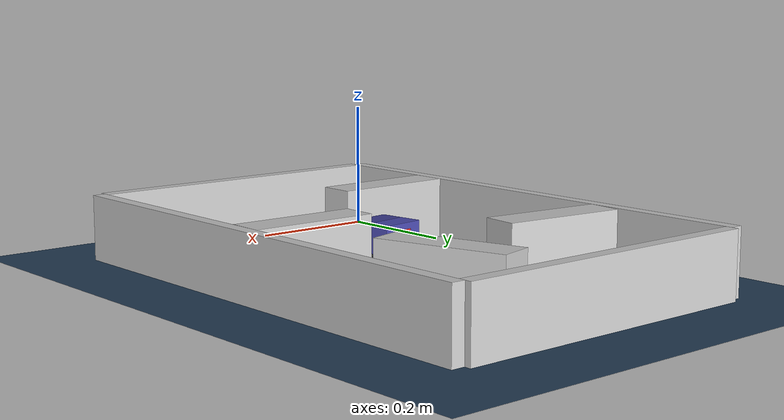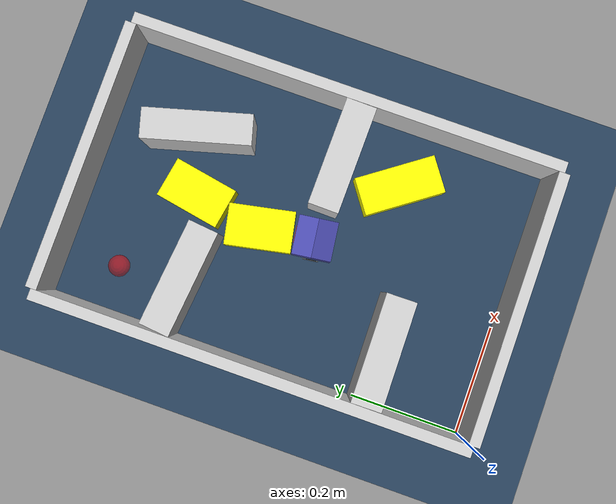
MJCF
<?xml version='1.0' encoding='utf-8'?>
<mujoco model="real_buildable">
  <compiler angle="degree" />
  <option timestep="0.002" integrator="implicitfast" iterations="100" cone="elliptic" />
  <default>
    <geom density="1" />
  </default>
  <asset>
    <texture builtin="gradient" height="3072" rgb1="0.3 0.5 0.7" rgb2="0 0 0" type="skybox" width="512" />
    <texture builtin="checker" height="300" mark="edge" markrgb="0.8 0.8 0.8" name="groundplane" rgb1="0.2 0.3 0.4" rgb2="0.1 0.2 0.3" type="2d" width="300" />
    <material name="groundplane" reflectance="0.2" texrepeat="5 5" texture="groundplane" texuniform="true" />
  </asset>
  <worldbody>
    <light dir="0 0 -1" directional="true" pos="0 0 1.5" />
    <geom name="floor" type="plane" condim="4" friction="0.5 0.005 0.001" material="groundplane" size="0 0 0.05" />
    <body name="walls">
      <geom name="wall_boundary_left" type="box" condim="4" friction="1.0 0.005 0.0001" rgba="0.8 0.8 0.8 1" pos="-0.010000 0.387500 0.050000" euler="0 0 0.000000" size="0.010000 0.397500 0.050000" />
      <geom name="wall_boundary_right" type="box" condim="4" friction="1.0 0.005 0.0001" rgba="0.8 0.8 0.8 1" pos="0.500000 0.387500 0.050000" euler="0 0 0.000000" size="0.010000 0.397500 0.050000" />
      <geom name="wall_boundary_bottom" type="box" condim="4" friction="1.0 0.005 0.0001" rgba="0.8 0.8 0.8 1" pos="0.245000 -0.010000 0.050000" euler="0 0 0.000000" size="0.245000 0.010000 0.050000" />
      <geom name="wall_boundary_top" type="box" condim="4" friction="1.0 0.005 0.0001" rgba="0.8 0.8 0.8 1" pos="0.245000 0.785000 0.050000" euler="0 0 0.000000" size="0.245000 0.010000 0.050000" />
      <geom name="wall_inner_1" type="box" condim="4" friction="1.0 0.005 0.0001" rgba="0.8 0.8 0.8 1" pos="0.097808 0.183074 0.050000" euler="0 0 0.654098" size="0.097500 0.027500 0.050000" />
      <geom name="wall_inner_2" type="box" condim="4" friction="1.0 0.005 0.0001" rgba="0.8 0.8 0.8 1" pos="0.392076 0.360205 0.050000" euler="0 0 -0.908587" size="0.097500 0.027500 0.050000" />
      <geom name="wall_inner_3" type="box" condim="4" friction="1.0 0.005 0.0001" rgba="0.8 0.8 0.8 1" pos="0.100000 0.554000 0.050000" euler="0 0 174.100000" size="0.097500 0.027500 0.050000" />
      <geom name="wall_inner_4" type="box" condim="4" friction="1.0 0.005 0.0001" rgba="0.8 0.8 0.8 1" pos="0.356000 0.615000 0.050000" euler="0 0 105.500000" size="0.097500 0.027500 0.050000" />
    </body>
    <body name="car" pos="0.24292371431913026 0.35747487242428583 0.01" quat="0.66119342478367993 0 0 0.75021547239631636">
      <freejoint name="car_freejoint" />
      <inertial pos="0 0 0.0375" mass="0.35" diaginertia="0.000266 0.000266 0.000286" />
      <geom name="front_chassis_collision" type="box" pos="0.0175 0 0.0375" size="0.0175 0.035 0.0325" rgba="0.3 0.3 0.7 1" />
      <geom name="rear_chassis_collision" type="box" pos="-0.0175 0 0.0375" size="0.0175 0.035 0.0325" rgba="0.25 0.25 0.6 1" />
      <geom name="front_marker" type="box" pos="0.034 0 0.0505" size="0.002 0.015 0.01" rgba="1 0.2 0.2 1" contype="0" conaffinity="0" />
      <body name="rear_support_body" pos="-0.03 0 0.0025">
        <joint name="rear_caster_joint" type="ball" damping="0.0001" />
        <inertial pos="0 0 0" mass="0.025" diaginertia="0.000001 0.000001 0.000001" />
        <geom name="rear_support" type="sphere" pos="0 0 0" size="0.0025" friction="0 0 0" rgba="0.7 0.1 0.1 1" />
      </body>
      <body name="front_support_body" pos="0.03 0 0.0025">
        <joint name="front_caster_joint" type="ball" damping="0.0001" />
        <inertial pos="0 0 0" mass="0.025" diaginertia="0.000001 0.000001 0.000001" />
        <geom name="front_support" type="sphere" pos="0 0 0" size="0.0025" friction="0 0 0" rgba="0.1 0.7 0.1 1" />
      </body>
      <body name="left_wheel" pos="0 0.0375 0.015">
        <inertial pos="0 0 0" mass="0.05" diaginertia="0.000003 0.000006 0.000003" />
        <joint name="left_wheel_joint" type="hinge" axis="0 1 0" damping="0.01" armature="0.0001" />
        <geom name="left_wheel_collision" type="cylinder" size="0.015 0.0005" euler="90 0 0" rgba="0.1 0.1 0.1 1" />
      </body>
      <body name="right_wheel" pos="0 -0.0375 0.015">
        <inertial pos="0 0 0" mass="0.05" diaginertia="0.000003 0.000006 0.000003" />
        <joint name="right_wheel_joint" type="hinge" axis="0 1 0" damping="0.01" armature="0.0001" />
        <geom name="right_wheel_collision" type="cylinder" size="0.015 0.0005" euler="90 0 0" rgba="0.1 0.1 0.1 1" />
      </body>
    </body>
    <body name="obstacle_0_movable">
      <geom name="obstacle_0_movable" condim="4" pos="0.22902249330267277 0.45614329450606511 0.025000000000000001" friction="1 0.005 0.0001" rgba="1 1 0 1" size="0.037500 0.060000 0.025000" type="box" mass="0.1" quat="0.99506618618784759 0 0 0.099213331289559684" />
      <joint type="free" />
    </body>
    <body name="obstacle_1_movable">
      <geom name="obstacle_1_movable" condim="4" pos="0.25069479262081146 0.58387334879402208 0.025000000000000001" friction="1 0.005 0.0001" rgba="1 1 0 1" size="0.037500 0.060000 0.025000" type="box" mass="0.1" quat="0.99604332154413044 0 0 -0.088869013763717919" />
      <joint type="free" />
    </body>
    <body name="obstacle_2_movable">
      <geom name="obstacle_2_movable" condim="4" pos="0.3861319999999992 0.2449889999999996 0.02" friction="1 0.005 0.0001" rgba="1 1 0 1" size="0.035000 0.075000 0.020000" type="box" mass="0.1" quat="0.95180641351910933 0 0 0.30669944764197138" />
      <joint type="free" />
    </body>
    <site name="goal" type="sphere" pos="0.080000 0.680000 0.0" size="0.02" rgba="1 0 0 0.5" />
  </worldbody>
  <actuator>
    <velocity name="left_wheel_drive" joint="left_wheel_joint" ctrlrange="-25 25" kv="0.75" forcerange="-0.5 0.5" />
    <velocity name="right_wheel_drive" joint="right_wheel_joint" ctrlrange="-25 25" kv="0.75" forcerange="-0.5 0.5" />
  </actuator>
</mujoco>
